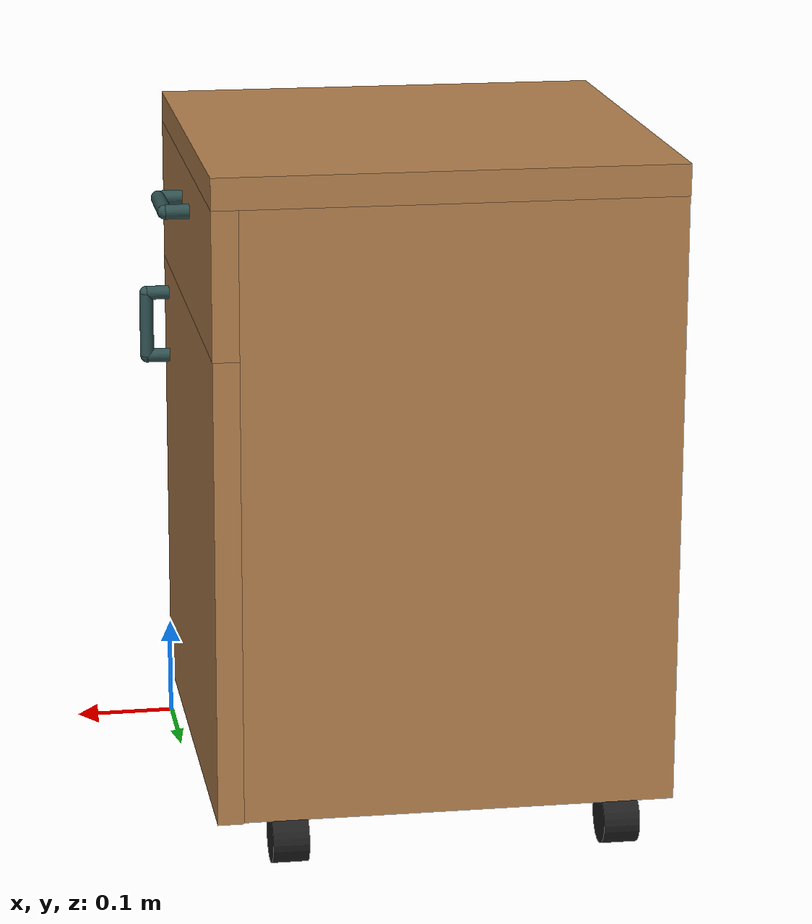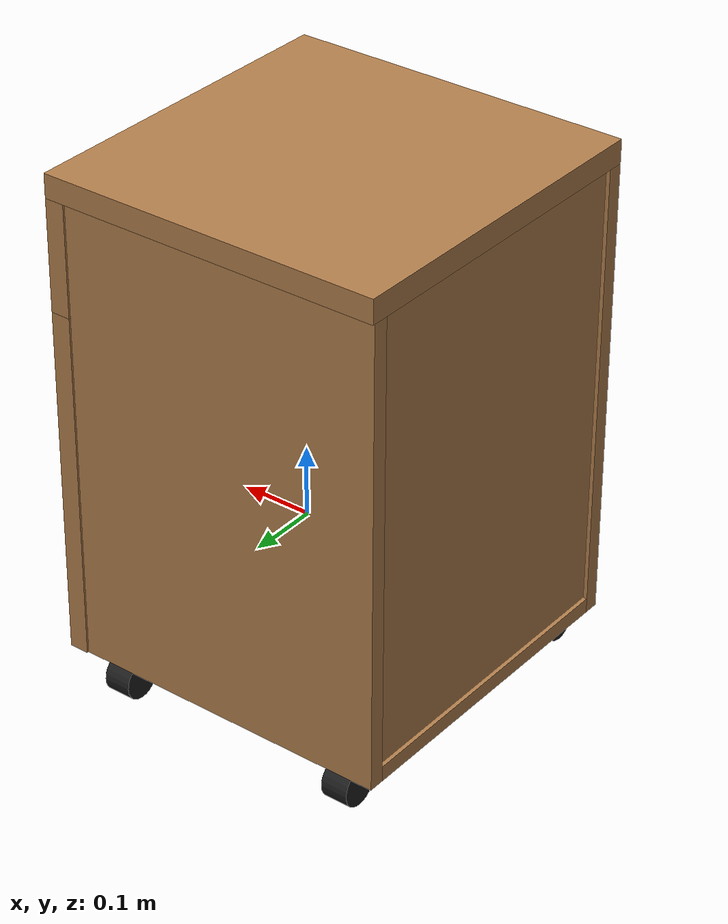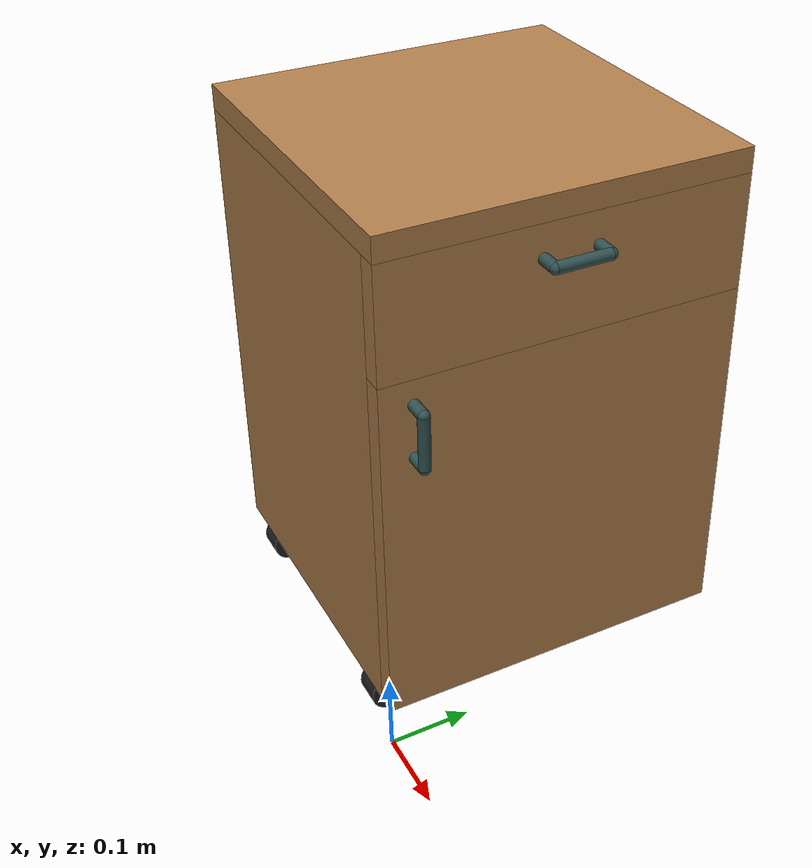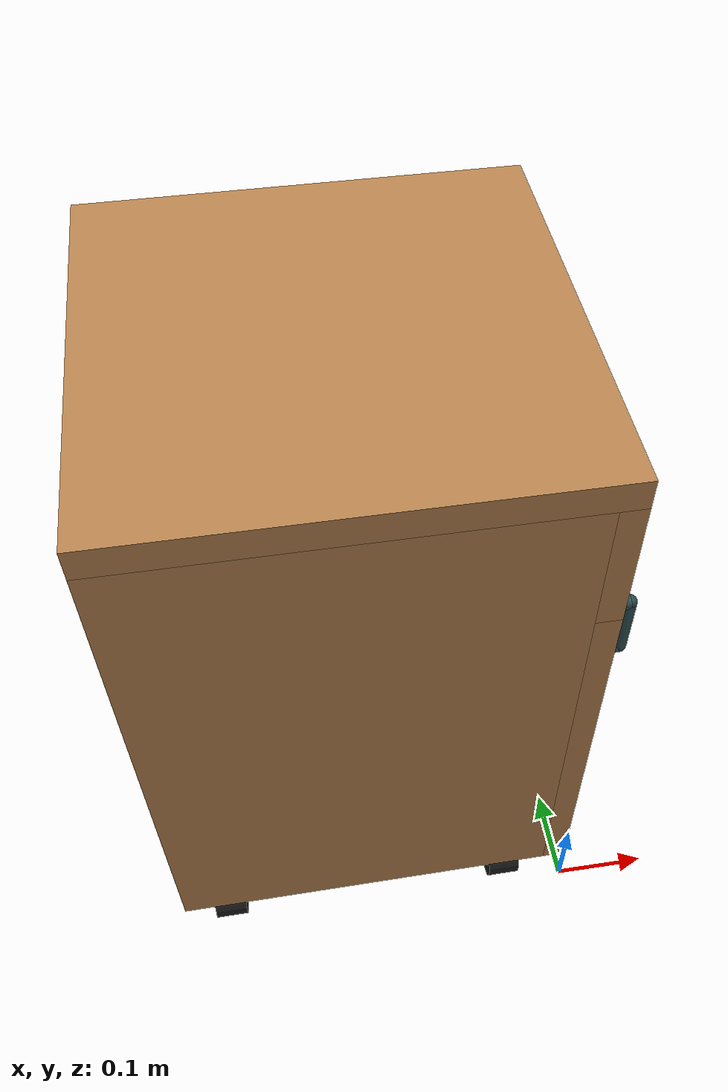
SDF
<?xml version="1.0" ?>
<sdf version="1.4">
    <model name='wagon'>
      <link name='link'>
        <pose>0.0 0.0 0.0 0 0 0</pose>
        <inertial>
          <mass>10.0</mass>
          <inertia>
            <ixx>1</ixx>
            <ixy>0</ixy>
            <ixz>0</ixz>
            <iyy>1</iyy>
            <iyz>0</iyz>
            <izz>1</izz>
          </inertia>
        </inertial>
        <visual name='left_board'>
          <pose>-0.2325 0.01 0.345 0 0 0</pose>
          <geometry>
            <box>
              <size>0.415 0.02 0.590</size>
            </box>
          </geometry>
          <material>
            <script>
              <uri>model://base_materials/wood/scripts/wood.material</uri>
              <name>base_materials/wood</name>
            </script>
          </material>
        </visual>
        <collision name='collision_left_board'>
          <pose>-0.2325 0.01 0.345 0 0 0</pose>
          <geometry>
            <box>
              <size>0.415 0.02 0.590</size>
            </box>
          </geometry>
          <max_contacts>10</max_contacts>
          <surface>
            <bounce/>
            <friction>
              <ode/>
            </friction>
            <contact>
              <ode/>
            </contact>
          </surface>
        </collision>
        <visual name='right_board'>
          <pose>-0.2325 0.4325 0.345 0 0 0</pose>
          <geometry>
            <box>
              <size>0.415 0.02 0.590</size>
            </box>
          </geometry>
          <material>
            <script>
              <uri>model://base_materials/wood/scripts/wood.material</uri>
              <name>base_materials/wood</name>
            </script>
          </material>
        </visual>
        <collision name='collision_right_board'>
          <pose>-0.2325 0.4325 0.345 0 0 0</pose>
          <geometry>
            <box>
              <size>0.415 0.02 0.590</size>
            </box>
          </geometry>
          <max_contacts>10</max_contacts>
          <surface>
            <bounce/>
            <friction>
              <ode/>
            </friction>
            <contact>
              <ode/>
            </contact>
          </surface>
        </collision>
        <visual name='top_board'>
          <pose>-0.22 0.2225 0.655 0 0 0</pose>
          <geometry>
            <box>
              <size>0.44 0.445 0.03</size>
            </box>
          </geometry>
          <material>
            <script>
              <uri>model://base_materials/wood/scripts/wood.material</uri>
              <name>base_materials/wood</name>
            </script>
          </material>
        </visual>
        <collision name='collision_top_board'>
          <pose>-0.22 0.2225 0.655 0 0 0</pose>
          <geometry>
            <box>
              <size>0.44 0.445 0.03</size>
            </box>
          </geometry>
          <max_contacts>10</max_contacts>
          <surface>
            <bounce/>
            <friction>
              <ode/>
            </friction>
            <contact>
              <ode/>
            </contact>
          </surface>
        </collision>
        <visual name='back_board'>
          <pose>-0.425 0.2225 0.345 0 0 0</pose>
          <geometry>
            <box>
              <size>0.02 0.405 0.59</size>
            </box>
          </geometry>
          <material>
            <script>
              <uri>model://base_materials/wood/scripts/wood.material</uri>
              <name>base_materials/wood</name>
            </script>
          </material>
        </visual>
        <collision name='collision_back_board'>
          <pose>-0.425 0.2225 0.345 0 0 0</pose>
          <geometry>
            <box>
              <size>0.02 0.405 0.59</size>
            </box>
          </geometry>
          <max_contacts>10</max_contacts>
          <surface>
            <bounce/>
            <friction>
              <ode/>
            </friction>
            <contact>
              <ode/>
            </contact>
          </surface>
        </collision>
        <visual name='bottom_board'>
          <pose>-0.2325 0.2225 0.06 0 0 0</pose>
          <geometry>
            <box>
              <size>0.415 0.405 0.02</size>
            </box>
          </geometry>
          <material>
            <script>
              <uri>model://base_materials/wood/scripts/wood.material</uri>
              <name>base_materials/wood</name>
            </script>
          </material>
        </visual>
        <collision name='collision_bottom_board'>
          <pose>-0.2325 0.2225 0.06 0 0 0</pose>
          <geometry>
            <box>
              <size>0.415 0.405 0.02</size>
            </box>
          </geometry>
          <max_contacts>10</max_contacts>
          <surface>
            <bounce/>
            <friction>
              <ode/>
            </friction>
            <contact>
              <ode/>
            </contact>
          </surface>
        </collision>
        <visual name='1st_drawer'>
          <pose>-0.0125 0.2225 0.57 0 0 0</pose>
          <geometry>
            <box>
              <size>0.025 0.445 0.140</size>
            </box>
          </geometry>
          <material>
            <script>
              <uri>model://base_materials/wood/scripts/wood.material</uri>
              <name>base_materials/wood</name>
            </script>
          </material>
        </visual>
        <collision name='collision_1st_drawer'>
          <pose>-0.0125 0.2225 0.57 0 0 0</pose>
          <geometry>
            <box>
              <size>0.025 0.445 0.140</size>
            </box>
          </geometry>
          <max_contacts>10</max_contacts>
          <surface>
            <bounce/>
            <friction>
              <ode/>
            </friction>
            <contact>
              <ode/>
            </contact>
          </surface>
        </collision>
        <visual name='1st_drawer_handle_l1'>
          <pose>0.0115 0.1895 0.6 0 1.5708 0</pose>
          <geometry>
            <cylinder>
              <radius>0.007</radius>
              <length>0.023</length>
            </cylinder>
          </geometry>
          <material>
            <!-- color:darkslategray -->
            <ambient>0.18431 0.3098 0.3098 1</ambient>
            <diffuse>0.18431 0.3098 0.3098 1</diffuse>
            <specular>0.1 0.1 0.1 1</specular>
          </material>
        </visual>
        <collision name='collision_1st_drawer_handle_l1'>
          <pose>0.0115 0.1895 0.6 0 1.5708 0</pose>
          <geometry>
            <cylinder>
              <radius>0.007</radius>
              <length>0.023</length>
            </cylinder>
          </geometry>
          <max_contacts>10</max_contacts>
          <surface>
            <bounce/>
            <friction>
              <ode/>
            </friction>
            <contact>
              <ode/>
            </contact>
          </surface>
        </collision>
        <visual name='1st_drawer_handle_l2'>
          <pose>0.023 0.1895 0.6 0 0 0</pose>
          <geometry>
            <sphere>
              <radius>0.007</radius>
            </sphere>
          </geometry>
          <material>
            <!-- color:darkslategray -->
            <ambient>0.18431 0.3098 0.3098 1</ambient>
            <diffuse>0.18431 0.3098 0.3098 1</diffuse>
            <specular>0.1 0.1 0.1 1</specular>
          </material>
        </visual>
        <collision name='collision_1st_drawer_handle_l2'>
          <pose>0.023 0.1895 0.6 0 0 0</pose>
          <geometry>
            <sphere>
              <radius>0.007</radius>
            </sphere>
          </geometry>
          <max_contacts>10</max_contacts>
          <surface>
            <bounce/>
            <friction>
              <ode/>
            </friction>
            <contact>
              <ode/>
            </contact>
          </surface>
        </collision>
        <visual name='1st_drawer_handle_r1'>
          <pose>0.0115 0.2555 0.6 0 1.5708 0</pose>
          <geometry>
            <cylinder>
              <radius>0.007</radius>
              <length>0.023</length>
            </cylinder>
          </geometry>
          <material>
            <!-- color:darkslategray -->
            <ambient>0.18431 0.3098 0.3098 1</ambient>
            <diffuse>0.18431 0.3098 0.3098 1</diffuse>
            <specular>0.1 0.1 0.1 1</specular>
          </material>
        </visual>
        <collision name='collision_1st_drawer_handle_r1'>
          <pose>0.0115 0.2555 0.6 0 1.5708 0</pose>
          <geometry>
            <cylinder>
              <radius>0.007</radius>
              <length>0.023</length>
            </cylinder>
          </geometry>
          <max_contacts>10</max_contacts>
          <surface>
            <bounce/>
            <friction>
              <ode/>
            </friction>
            <contact>
              <ode/>
            </contact>
          </surface>
        </collision>
        <visual name='1st_drawer_handle_r2'>
          <pose>0.023 0.2555 0.6 0 0 0</pose>
          <geometry>
            <sphere>
              <radius>0.007</radius>
            </sphere>
          </geometry>
          <material>
            <!-- color:darkslategray -->
            <ambient>0.18431 0.3098 0.3098 1</ambient>
            <diffuse>0.18431 0.3098 0.3098 1</diffuse>
            <specular>0.1 0.1 0.1 1</specular>
          </material>
        </visual>
        <collision name='collision_1st_drawer_handle_r2'>
          <pose>0.023 0.2555 0.6 0 0 0</pose>
          <geometry>
            <sphere>
              <radius>0.007</radius>
            </sphere>
          </geometry>
          <max_contacts>10</max_contacts>
          <surface>
            <bounce/>
            <friction>
              <ode/>
            </friction>
            <contact>
              <ode/>
            </contact>
          </surface>
        </collision>
        <visual name='1st_drawer_handle_center'>
          <pose>0.023 0.2225 0.6 1.5708 0 0</pose>
          <geometry>
            <cylinder>
              <radius>0.007</radius>
              <length>0.066</length>
            </cylinder>
          </geometry>
          <material>
            <!-- color:darkslategray -->
            <ambient>0.18431 0.3098 0.3098 1</ambient>
            <diffuse>0.18431 0.3098 0.3098 1</diffuse>
            <specular>0.1 0.1 0.1 1</specular>
          </material>
        </visual>
        <collision name='collision_1st_drawer_handle_center'>
          <pose>0.023 0.2225 0.6 1.5708 0 0</pose>
          <geometry>
            <cylinder>
              <radius>0.007</radius>
              <length>0.066</length>
            </cylinder>
          </geometry>
          <max_contacts>10</max_contacts>
          <surface>
            <bounce/>
            <friction>
              <ode/>
            </friction>
            <contact>
              <ode/>
            </contact>
          </surface>
        </collision>
        <visual name='2nd_drawer'>
          <pose>-0.0125 0.2225 0.275 0 0 0</pose>
          <geometry>
            <box>
              <size>0.025 0.445 0.45</size>
            </box>
          </geometry>
          <material>
            <script>
              <uri>model://base_materials/wood/scripts/wood.material</uri>
              <name>base_materials/wood</name>
            </script>
          </material>
        </visual>
        <collision name='collision_2nd_drawer'>
          <pose>-0.0125 0.2225 0.275 0 0 0</pose>
          <geometry>
            <box>
              <size>0.025 0.445 0.45</size>
            </box>
          </geometry>
          <max_contacts>10</max_contacts>
          <surface>
            <bounce/>
            <friction>
              <ode/>
            </friction>
            <contact>
              <ode/>
            </contact>
          </surface>
        </collision>
        <visual name='2nd_drawer_handle_top1'>
          <pose>0.0115 0.04 0.47 0 1.5708 0</pose>
          <geometry>
            <cylinder>
              <radius>0.007</radius>
              <length>0.023</length>
            </cylinder>
          </geometry>
          <material>
            <!-- color:darkslategray -->
            <ambient>0.18431 0.3098 0.3098 1</ambient>
            <diffuse>0.18431 0.3098 0.3098 1</diffuse>
            <specular>0.1 0.1 0.1 1</specular>
          </material>
        </visual>
        <collision name='collision_2nd_drawer_handle_top1'>
          <pose>0.0115 0.04 0.47 0 1.5708 0</pose>
          <geometry>
            <cylinder>
              <radius>0.007</radius>
              <length>0.023</length>
            </cylinder>
          </geometry>
          <max_contacts>10</max_contacts>
          <surface>
            <bounce/>
            <friction>
              <ode/>
            </friction>
            <contact>
              <ode/>
            </contact>
          </surface>
        </collision>
        <visual name='2nd_drawer_handle_top2'>
          <pose>0.023 0.04 0.47 0 0 0</pose>
          <geometry>
            <sphere>
              <radius>0.007</radius>
            </sphere>
          </geometry>
          <material>
            <!-- color:darkslategray -->
            <ambient>0.18431 0.3098 0.3098 1</ambient>
            <diffuse>0.18431 0.3098 0.3098 1</diffuse>
            <specular>0.1 0.1 0.1 1</specular>
          </material>
        </visual>
        <collision name='2nd_drawer_handle_top2'>
          <pose>0.023 0.04 0.47 0 0 0</pose>
          <geometry>
            <sphere>
              <radius>0.007</radius>
            </sphere>
          </geometry>
          <max_contacts>10</max_contacts>
          <surface>
            <bounce/>
            <friction>
              <ode/>
            </friction>
            <contact>
              <ode/>
            </contact>
          </surface>
        </collision>
        <visual name='2nd_drawer_handle_bottom1'>
          <pose>0.0115 0.04 0.404 0 1.5708 0</pose>
          <geometry>
            <cylinder>
              <radius>0.007</radius>
              <length>0.023</length>
            </cylinder>
          </geometry>
          <material>
            <!-- color:darkslategray -->
            <ambient>0.18431 0.3098 0.3098 1</ambient>
            <diffuse>0.18431 0.3098 0.3098 1</diffuse>
            <specular>0.1 0.1 0.1 1</specular>
          </material>
        </visual>
        <collision name='collision_2nd_drawer_handle_bottom1'>
          <pose>0.0115 0.04 0.404 0 1.5708 0</pose>
          <geometry>
            <cylinder>
              <radius>0.007</radius>
              <length>0.023</length>
            </cylinder>
          </geometry>
          <max_contacts>10</max_contacts>
          <surface>
            <bounce/>
            <friction>
              <ode/>
            </friction>
            <contact>
              <ode/>
            </contact>
          </surface>
        </collision>
        <visual name='2nd_drawer_handle_bottom2'>
          <pose>0.023 0.04 0.404 0 0 0</pose>
          <geometry>
            <sphere>
              <radius>0.007</radius>
            </sphere>
          </geometry>
          <material>
            <!-- color:darkslategray -->
            <ambient>0.18431 0.3098 0.3098 1</ambient>
            <diffuse>0.18431 0.3098 0.3098 1</diffuse>
            <specular>0.1 0.1 0.1 1</specular>
          </material>
        </visual>
        <collision name='2nd_drawer_handle_bottom2'>
          <pose>0.023 0.04 0.404 0 0 0</pose>
          <geometry>
            <sphere>
              <radius>0.007</radius>
            </sphere>
          </geometry>
          <max_contacts>10</max_contacts>
          <surface>
            <bounce/>
            <friction>
              <ode/>
            </friction>
            <contact>
              <ode/>
            </contact>
          </surface>
        </collision>
        <visual name='2nd_drawer_handle_center'>
          <pose>0.023 0.04 0.437 0 0 0</pose>
          <geometry>
            <cylinder>
              <radius>0.007</radius>
              <length>0.066</length>
            </cylinder>
          </geometry>
          <material>
            <!-- color:darkslategray -->
            <ambient>0.18431 0.3098 0.3098 1</ambient>
            <diffuse>0.18431 0.3098 0.3098 1</diffuse>
            <specular>0.1 0.1 0.1 1</specular>
          </material>
        </visual>
        <collision name='collision_2nd_drawer_handle_center'>
          <pose>0.023 0.04 0.437 0 0 0</pose>
          <geometry>
            <cylinder>
              <radius>0.007</radius>
              <length>0.066</length>
            </cylinder>
          </geometry>
          <max_contacts>10</max_contacts>
          <surface>
            <bounce/>
            <friction>
              <ode/>
            </friction>
            <contact>
              <ode/>
            </contact>
          </surface>
        </collision>
        <visual name='left_front_caster'>
          <pose>-0.07 0.025 0.025 0 1.5708 0</pose>
          <geometry>
            <cylinder>
              <radius>0.025</radius>
              <length>0.035</length>
            </cylinder>
          </geometry>
          <material>
            <script>
              <name>Gazebo/Black</name>
            </script>
          </material>
        </visual>
        <collision name='collision_left_front_caster'>
          <pose>-0.07 0.025 0.025 0 1.5708 0</pose>
          <geometry>
            <cylinder>
              <radius>0.025</radius>
              <length>0.035</length>
            </cylinder>
          </geometry>
          <max_contacts>10</max_contacts>
          <surface>
            <bounce/>
            <friction>
              <ode/>
            </friction>
            <contact>
              <ode/>
            </contact>
          </surface>
        </collision>
        <visual name='right_front_caster'>
          <pose>-0.07 0.420 0.025 0 1.5708 0</pose>
          <geometry>
            <cylinder>
              <radius>0.025</radius>
              <length>0.035</length>
            </cylinder>
          </geometry>
          <material>
            <script>
              <name>Gazebo/Black</name>
            </script>
          </material>
        </visual>
        <collision name='collision_right_front_caster'>
          <pose>-0.07 0.420 0.025 0 1.5708 0</pose>
          <geometry>
            <cylinder>
              <radius>0.025</radius>
              <length>0.035</length>
            </cylinder>
          </geometry>
          <max_contacts>10</max_contacts>
          <surface>
            <bounce/>
            <friction>
              <ode/>
            </friction>
            <contact>
              <ode/>
            </contact>
          </surface>
        </collision>
        <visual name='left_back_caster'>
          <pose>-0.39 0.025 0.025 0 1.5708 0</pose>
          <geometry>
            <cylinder>
              <radius>0.025</radius>
              <length>0.035</length>
            </cylinder>
          </geometry>
          <material>
            <script>
              <name>Gazebo/Black</name>
            </script>
          </material>
        </visual>
        <collision name='collision_left_back_caster'>
          <pose>-0.39 0.025 0.025 0 1.5708 0</pose>
          <geometry>
            <cylinder>
              <radius>0.025</radius>
              <length>0.035</length>
            </cylinder>
          </geometry>
          <max_contacts>10</max_contacts>
          <surface>
            <bounce/>
            <friction>
              <ode/>
            </friction>
            <contact>
              <ode/>
            </contact>
          </surface>
        </collision>
        <visual name='right_back_caster'>
          <pose>-0.39 0.420 0.025 0 1.5708 0</pose>
          <geometry>
            <cylinder>
              <radius>0.025</radius>
              <length>0.035</length>
            </cylinder>
          </geometry>
          <material>
            <script>
              <name>Gazebo/Black</name>
            </script>
          </material>
        </visual>
        <collision name='collision_right_back_caster'>
          <pose>-0.39 0.420 0.025 0 1.5708 0</pose>
          <geometry>
            <cylinder>
              <radius>0.025</radius>
              <length>0.035</length>
            </cylinder>
          </geometry>
          <max_contacts>10</max_contacts>
          <surface>
            <bounce/>
            <friction>
              <ode/>
            </friction>
            <contact>
              <ode/>
            </contact>
          </surface>
        </collision>
        <velocity_decay>
          <linear>0</linear>
          <angular>0</angular>
        </velocity_decay>
        <self_collide>0</self_collide>
        <kinematic>0</kinematic>
        <gravity>1</gravity>
      </link>
      <static>1</static>
    </model>
</sdf>
